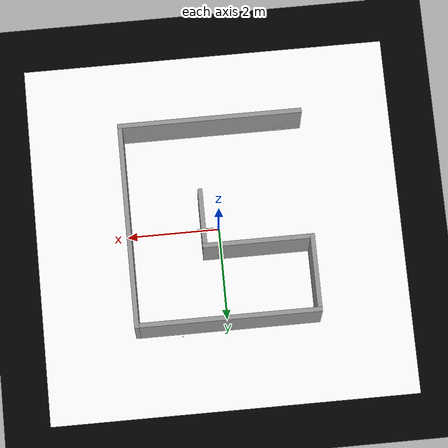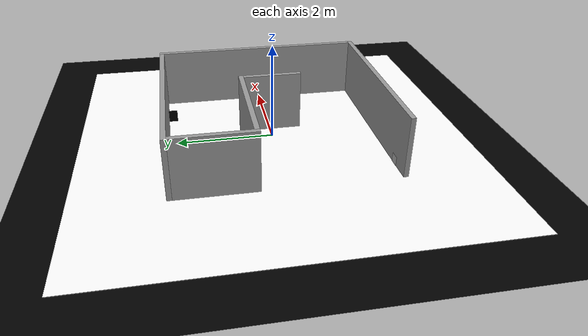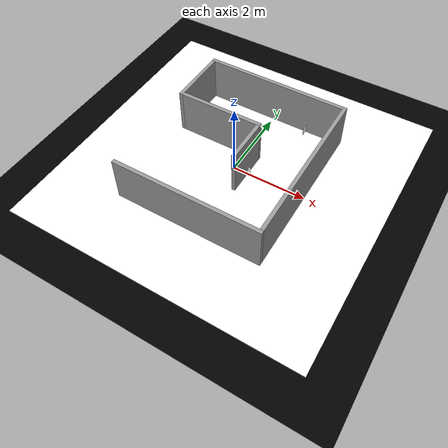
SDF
<sdf version="1.4">
  <world name="default">

    <physics name="1ms" type="ignored">
      <max_step_size>0.001</max_step_size>
      <real_time_factor>1.0</real_time_factor>
    </physics>
    <plugin
      filename="gz-sim-physics-system"
      name="gz::sim::systems::Physics">
    </plugin>
    <plugin
      filename="gz-sim-user-commands-system"
      name="gz::sim::systems::UserCommands">
    </plugin>
    <plugin
      filename="gz-sim-scene-broadcaster-system"
      name="gz::sim::systems::SceneBroadcaster">
    </plugin>

    <plugin
        filename="gz-sim-sensors-system"
        name="gz::sim::systems::Sensors">
        <render_engine>ogre2</render_engine>
    </plugin>

    <scene>
      <ambient>0.4 0.4 0.4 1</ambient>
      <background>0.7 0.7 0.7 1</background>
      <shadows>false</shadows>
    </scene>

    <!-- Arena lights -->
    <include>
    <name>light1</name>
      <uri>model://simple_light</uri>
      <pose>2 2 10 0 0 0</pose>
    </include>

    <include>
    <name>light2</name>
      <uri>model://simple_light</uri>
      <pose>-2 2 10 0 0 0</pose>
    </include>

    <include>
    <name>light3</name>
      <uri>model://simple_light</uri>
      <pose>-2 -2 10 0 0 0</pose>
    </include>

    <include>
    <name>light4</name>
      <uri>model://simple_light</uri>
      <pose>2 -2 10 0 0 0</pose>
    </include>

    <include>
      <uri>model://office_floor</uri>
      <pose>0.0 0.0 0.0 0.0 0.0 -1.5708</pose>
    </include>

    <include>
      <uri>model://avoidance_world_2</uri>
    </include>

    <include>
      <uri>model://goal_marker_3</uri>
      <pose>-1.2 1.5 0.001 0 0 0</pose>
    </include>

    <!-- Aruco markers -->
    <include>
      <name>marker_0</name>
      <uri>model://aruco_marker_0</uri>
      <pose>-1.5 -2.145 0.091 0 0 1.5708</pose>
    </include>

    <include>
      <name>marker_1</name>
      <uri>model://aruco_marker_1</uri>
      <pose>0.3 0 0.091 0 0 3.1415</pose>
    </include>

    <include>
      <name>marker_2</name>
      <uri>model://aruco_marker_2</uri>
      <pose>1.0 2.14 0.091 0 0 4.7123</pose>
    </include>

  </world>
</sdf>

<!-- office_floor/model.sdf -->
<sdf version="1.5">
        <model name="puzzlebot_base">
            <static>true</static>
        <link name="link">
            <pose>0 0 0.0 0 0 1.5708 </pose>
            <collision name="collision">
                <geometry>
                <plane>
                    <normal>0 0 1</normal>
                    <size>10.0 10.0</size>
                </plane>
                </geometry>
                <surface>
                <contact>
                    <collide_bitmask>0xffff</collide_bitmask>
                    </contact>
                        <friction>
                        <ode>
                            <mu>100</mu>
                            <mu2>50</mu2>
                        </ode>
                        </friction>
                </surface>
            </collision>
            <visual name="visual">
                <pose>0 0 -0.001 0 0 0</pose>
                    <cast_shadows>false</cast_shadows>
                    <geometry>
                    <plane>
                        <normal>0 0 1</normal>
                        <size>10.0 10.0</size>
                    </plane>
                    </geometry>
                        <material>
                            <ambient>0 0 0 1</ambient>
                            <diffuse>0 0 0 1</diffuse>
                            <specular>0 0 0 1</specular>
                        </material>
                </visual>

                <visual name="mcr2_logo">
                <pose>0 0 0.0 0 0 0</pose>
                <cast_shadows>false</cast_shadows>
                <geometry>
                    <plane>
                    <normal>0 0 1</normal>
                    <size>8.0 8.0</size>
                    </plane>
                </geometry>
                        <material>
                            <ambient>1 1 1 1</ambient>
                            <diffuse>1 1 1 1</diffuse>
                            <specular>1 1 1 1</specular>
                            <pbr>
                                <metal>
                                <albedo_map>model://office_floor/materials/textures/puzzlebot_wood_7.png</albedo_map>
                                <normal_map>model://office_floor/materials/textures/puzzlebot_wood_7.png</normal_map>
                                </metal>
                            </pbr>
                        </material>
                </visual>
            </link>

        </model>
    </sdf>

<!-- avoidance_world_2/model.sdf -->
<sdf version="1.5">
  <model name='office'>

    <static>1</static>

    <link name='Wall_10'>
        <pose>0.35 -0.05 0.625 0.0 0.0 0.0</pose>

        <visual name='Wall_10_Visual'>
            <pose>0 0 0 0 -0 0</pose>
            <geometry>
                <box>
                    <size>0.1 1.2 1.25</size>
                </box>
            </geometry>
              <material>
                <ambient>0.6 0.6 0.6 1</ambient>
                <diffuse>0.6 0.6 0.6 1</diffuse>
                <specular>0.6 0.6 0.6 1</specular>
              </material>
        <cast_shadows>0</cast_shadows>
      </visual>

      <collision name='Wall_10_Collision'>
        <max_contacts>10</max_contacts>
        <pose>0 0 0.0 0 0 0</pose>
        <geometry>
          <box>
            <size>0.1 1.2 1.25</size>
          </box>
        </geometry>
        <surface>
          <friction>
            <ode>
              <mu>1</mu>
              <mu2>1</mu2>
              <fdir1>0 0 0</fdir1>
              <slip1>0</slip1>
              <slip2>0</slip2>
            </ode>
          </friction>
          <bounce>
            <restitution_coefficient>0</restitution_coefficient>
            <threshold>1e+06</threshold>
          </bounce>
          <contact>
            <collide_without_contact>0</collide_without_contact>
            <collide_without_contact_bitmask>1</collide_without_contact_bitmask>
            <collide_bitmask>1</collide_bitmask>
            <ode>
              <soft_cfm>0</soft_cfm>
              <soft_erp>0.2</soft_erp>
              <kp>1e+13</kp>
              <kd>1</kd>
              <max_vel>0.01</max_vel>
              <min_depth>0</min_depth>
            </ode>
            <bullet>
              <split_impulse>1</split_impulse>
              <split_impulse_penetration_threshold>-0.01</split_impulse_penetration_threshold>
              <soft_cfm>0</soft_cfm>
              <soft_erp>0.2</soft_erp>
              <kp>1e+13</kp>
              <kd>1</kd>
            </bullet>
          </contact>
        </surface>
      </collision>
    </link>

    <link name='Wall_20'>
          <pose>-0.750 0.6 0.625 0.0 0.0 0.0</pose>

          <visual name='Wall_20_Visual'>
              <pose>0 0 0 0 -0 0</pose>
              <geometry>
                  <box>
                      <size>2.3 0.1 1.25</size>
                  </box>
              </geometry>
              <material>
                <ambient>0.6 0.6 0.6 1</ambient>
                <diffuse>0.6 0.6 0.6 1</diffuse>
                <specular>0.6 0.6 0.6 1</specular>
              </material>
          <cast_shadows>0</cast_shadows>
        </visual>

        <collision name='Wall_20_Collision'>
          <max_contacts>10</max_contacts>
          <pose>0 0 0.0 0 0 0</pose>
          <geometry>
            <box>
              <size>2.3 0.1 1.25</size>
            </box>
          </geometry>
          <surface>
            <friction>
              <ode>
                <mu>1</mu>
                <mu2>1</mu2>
                <fdir1>0 0 0</fdir1>
                <slip1>0</slip1>
                <slip2>0</slip2>
              </ode>
            </friction>
            <bounce>
              <restitution_coefficient>0</restitution_coefficient>
              <threshold>1e+06</threshold>
            </bounce>
            <contact>
              <collide_without_contact>0</collide_without_contact>
              <collide_without_contact_bitmask>1</collide_without_contact_bitmask>
              <collide_bitmask>1</collide_bitmask>
              <ode>
                <soft_cfm>0</soft_cfm>
                <soft_erp>0.2</soft_erp>
                <kp>1e+13</kp>
                <kd>1</kd>
                <max_vel>0.01</max_vel>
                <min_depth>0</min_depth>
              </ode>
              <bullet>
                <split_impulse>1</split_impulse>
                <split_impulse_penetration_threshold>-0.01</split_impulse_penetration_threshold>
                <soft_cfm>0</soft_cfm>
                <soft_erp>0.2</soft_erp>
                <kp>1e+13</kp>
                <kd>1</kd>
              </bullet>
            </contact>
          </surface>
        </collision>
    </link>

    <link name='Wall_30'>
        <pose>-1.95 1.35 0.625 0.0 0.0 0.0</pose>

        <visual name='Wall_30_Visual'>
            <pose>0 0 0 0 -0 0</pose>
            <geometry>
                <box>
                    <size>0.1 1.6 1.25</size>
                </box>
            </geometry>
              <material>
                <ambient>0.6 0.6 0.6 1</ambient>
                <diffuse>0.6 0.6 0.6 1</diffuse>
                <specular>0.6 0.6 0.6 1</specular>
              </material>
        <cast_shadows>0</cast_shadows>
      </visual>

      <collision name='Wall_30_Collision'>
        <max_contacts>10</max_contacts>
        <pose>0 0 0.0 0 0 0</pose>
        <geometry>
          <box>
            <size>0.1 1.6 1.25</size>
          </box>
        </geometry>
        <surface>
          <friction>
            <ode>
              <mu>1</mu>
              <mu2>1</mu2>
              <fdir1>0 0 0</fdir1>
              <slip1>0</slip1>
              <slip2>0</slip2>
            </ode>
          </friction>
          <bounce>
            <restitution_coefficient>0</restitution_coefficient>
            <threshold>1e+06</threshold>
          </bounce>
          <contact>
            <collide_without_contact>0</collide_without_contact>
            <collide_without_contact_bitmask>1</collide_without_contact_bitmask>
            <collide_bitmask>1</collide_bitmask>
            <ode>
              <soft_cfm>0</soft_cfm>
              <soft_erp>0.2</soft_erp>
              <kp>1e+13</kp>
              <kd>1</kd>
              <max_vel>0.01</max_vel>
              <min_depth>0</min_depth>
            </ode>
            <bullet>
              <split_impulse>1</split_impulse>
              <split_impulse_penetration_threshold>-0.01</split_impulse_penetration_threshold>
              <soft_cfm>0</soft_cfm>
              <soft_erp>0.2</soft_erp>
              <kp>1e+13</kp>
              <kd>1</kd>
            </bullet>
          </contact>
        </surface>
      </collision>
    </link>

    <link name='Wall_40'>
        <pose>-0.05 2.2 0.625 0.0 0.0 0.0</pose>

        <visual name='Wall_40_Visual'>
            <pose>0 0 0 0 -0 0</pose>
            <geometry>
                <box>
                    <size>3.9 0.1 1.25</size>
                </box>
            </geometry>
              <material>
                <ambient>0.6 0.6 0.6 1</ambient>
                <diffuse>0.6 0.6 0.6 1</diffuse>
                <specular>0.6 0.6 0.6 1</specular>
              </material>
        <cast_shadows>0</cast_shadows>
      </visual>

      <collision name='Wall_40_Collision'>
        <max_contacts>10</max_contacts>
        <pose>0 0 0.0 0 0 0</pose>
        <geometry>
          <box>
            <size>3.9 0.1 1.25</size>
          </box>
        </geometry>
        <surface>
          <friction>
            <ode>
              <mu>1</mu>
              <mu2>1</mu2>
              <fdir1>0 0 0</fdir1>
              <slip1>0</slip1>
              <slip2>0</slip2>
            </ode>
          </friction>
          <bounce>
            <restitution_coefficient>0</restitution_coefficient>
            <threshold>1e+06</threshold>
          </bounce>
          <contact>
            <collide_without_contact>0</collide_without_contact>
            <collide_without_contact_bitmask>1</collide_without_contact_bitmask>
            <collide_bitmask>1</collide_bitmask>
            <ode>
              <soft_cfm>0</soft_cfm>
              <soft_erp>0.2</soft_erp>
              <kp>1e+13</kp>
              <kd>1</kd>
              <max_vel>0.01</max_vel>
              <min_depth>0</min_depth>
            </ode>
            <bullet>
              <split_impulse>1</split_impulse>
              <split_impulse_penetration_threshold>-0.01</split_impulse_penetration_threshold>
              <soft_cfm>0</soft_cfm>
              <soft_erp>0.2</soft_erp>
              <kp>1e+13</kp>
              <kd>1</kd>
            </bullet>
          </contact>
        </surface>
      </collision>
    </link>

    <link name='Wall_50'>
        <pose>1.95 0.05 0.625 0.0 0.0 0.0</pose>

        <visual name='Wall_50_Visual'>
            <pose>0 0 0 0 -0 0</pose>
            <geometry>
                <box>
                    <size>0.1 4.4 1.25</size>
                </box>
            </geometry>
              <material>
                <ambient>0.6 0.6 0.6 1</ambient>
                <diffuse>0.6 0.6 0.6 1</diffuse>
                <specular>0.6 0.6 0.6 1</specular>
              </material>
        <cast_shadows>0</cast_shadows>
      </visual>

      <collision name='Wall_50_Collision'>
        <max_contacts>10</max_contacts>
        <pose>0 0 0.0 0 0 0</pose>
        <geometry>
          <box>
            <size>0.1 4.4 1.25</size>
          </box>
        </geometry>
        <surface>
          <friction>
            <ode>
              <mu>1</mu>
              <mu2>1</mu2>
              <fdir1>0 0 0</fdir1>
              <slip1>0</slip1>
              <slip2>0</slip2>
            </ode>
          </friction>
          <bounce>
            <restitution_coefficient>0</restitution_coefficient>
            <threshold>1e+06</threshold>
          </bounce>
          <contact>
            <collide_without_contact>0</collide_without_contact>
            <collide_without_contact_bitmask>1</collide_without_contact_bitmask>
            <collide_bitmask>1</collide_bitmask>
            <ode>
              <soft_cfm>0</soft_cfm>
              <soft_erp>0.2</soft_erp>
              <kp>1e+13</kp>
              <kd>1</kd>
              <max_vel>0.01</max_vel>
              <min_depth>0</min_depth>
            </ode>
            <bullet>
              <split_impulse>1</split_impulse>
              <split_impulse_penetration_threshold>-0.01</split_impulse_penetration_threshold>
              <soft_cfm>0</soft_cfm>
              <soft_erp>0.2</soft_erp>
              <kp>1e+13</kp>
              <kd>1</kd>
            </bullet>
          </contact>
        </surface>
      </collision>
    </link>

    <link name='Wall_60'>
        <pose>0.0 -2.2 0.625 0.0 0.0 0.0</pose>

        <visual name='Wall_60_Visual'>
            <pose>0 0 0 0 -0 0</pose>
            <geometry>
                <box>
                    <size>4.0 0.1 1.25</size>
                </box>
            </geometry>
              <material>
                <ambient>0.6 0.6 0.6 1</ambient>
                <diffuse>0.6 0.6 0.6 1</diffuse>
                <specular>0.6 0.6 0.6 1</specular>
              </material>
        <cast_shadows>0</cast_shadows>
      </visual>

      <collision name='Wall_60_Collision'>
        <max_contacts>10</max_contacts>
        <pose>0 0 0.0 0 0 0</pose>
        <geometry>
          <box>
            <size>4.0 0.1 1.25</size>
          </box>
        </geometry>
        <surface>
          <friction>
            <ode>
              <mu>1</mu>
              <mu2>1</mu2>
              <fdir1>0 0 0</fdir1>
              <slip1>0</slip1>
              <slip2>0</slip2>
            </ode>
          </friction>
          <bounce>
            <restitution_coefficient>0</restitution_coefficient>
            <threshold>1e+06</threshold>
          </bounce>
          <contact>
            <collide_without_contact>0</collide_without_contact>
            <collide_without_contact_bitmask>1</collide_without_contact_bitmask>
            <collide_bitmask>1</collide_bitmask>
            <ode>
              <soft_cfm>0</soft_cfm>
              <soft_erp>0.2</soft_erp>
              <kp>1e+13</kp>
              <kd>1</kd>
              <max_vel>0.01</max_vel>
              <min_depth>0</min_depth>
            </ode>
            <bullet>
              <split_impulse>1</split_impulse>
              <split_impulse_penetration_threshold>-0.01</split_impulse_penetration_threshold>
              <soft_cfm>0</soft_cfm>
              <soft_erp>0.2</soft_erp>
              <kp>1e+13</kp>
              <kd>1</kd>
            </bullet>
          </contact>
        </surface>
      </collision>
    </link>

  </model>
  </sdf>

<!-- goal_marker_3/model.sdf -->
<sdf version="1.5">
        <model name="goal_marker_3">
            <static>true</static>
                <link name="link">
                    <pose>0 0 0 0 0 0</pose>
                    <visual name="visual">
                        <cast_shadows>false</cast_shadows>
                        <geometry>
                            <plane>
                                    <normal>0 0 1</normal>
                                    <size>0.4 0.4</size>
                            </plane>
                        </geometry>
                        <material>
                            <ambient>1 1 1 1</ambient>
                            <diffuse>1 1 1 1</diffuse>
                            <specular>1 1 1 1</specular>
                            <pbr>
                                <metal>
                                <albedo_map>model://goal_marker_3/materials/textures/mcr2_goal_3.png</albedo_map>
                                <normal_map>model://goal_marker_3/materials/textures/mcr2_goal_3.png</normal_map>
                                </metal>
                            </pbr>
                        </material>
                    </visual>
                </link>
        </model>
    </sdf>

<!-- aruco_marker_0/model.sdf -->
<sdf version='1.6'>
  <model name='aruco_marker_0'>
    <link name='link_0'>
      <pose frame=''>0 0 0 0 -0 0</pose>
      <inertial>
        <mass>1</mass>
        <inertia>
          <ixx>0</ixx>
          <ixy>0</ixy>
          <ixz>0</ixz>
          <iyy>0</iyy>
          <iyz>0</iyz>
          <izz>0</izz>
        </inertia>
      </inertial>
      <visual name='visual'>
        <pose frame=''>0 0 0 0 -0 0</pose>
        <geometry>
          <mesh>
            <uri>file://isr-testbed/aruco_marker_0/aruco_marker_0.dae</uri>
            <scale>0.1 0.1 0.1</scale>
          </mesh>
        </geometry>
        <material>
          <lighting>1</lighting>
          <script>
            <uri>file://media/materials/scripts/gazebo.material</uri>
            <name>Gazebo/DepthMapVS</name>
          </script>
          <ambient>0.3 0.3 0.3 1</ambient>
          <diffuse>0.7 0.7 0.7 1</diffuse>
          <specular>0.01 0.01 0.01 1</specular>
          <emissive>0 0 0 1</emissive>
        </material>
        <transparency>0</transparency>
        <cast_shadows>1</cast_shadows>
      </visual>
      <collision name='collision'>
        <laser_retro>0</laser_retro>
        <max_contacts>10</max_contacts>
        <pose frame=''>0 0 0 0 -0 0</pose>
        <geometry>
          <mesh>
            <uri>file://isr-testbed/aruco_marker_0/aruco_marker_0.dae</uri>
            <scale>0.1 0.1 0.1</scale>
          </mesh>
        </geometry>
        <surface>
          <friction>
            <ode>
              <mu>1</mu>
              <mu2>1</mu2>
              <fdir1>0 0 0</fdir1>
              <slip1>0</slip1>
              <slip2>0</slip2>
            </ode>
            <torsional>
              <coefficient>1</coefficient>
              <patch_radius>0</patch_radius>
              <surface_radius>0</surface_radius>
              <use_patch_radius>1</use_patch_radius>
              <ode>
                <slip>0</slip>
              </ode>
            </torsional>
          </friction>
          <bounce>
            <restitution_coefficient>0</restitution_coefficient>
            <threshold>1e+06</threshold>
          </bounce>
          <contact>
            <collide_without_contact>0</collide_without_contact>
            <collide_without_contact_bitmask>1</collide_without_contact_bitmask>
            <collide_bitmask>1</collide_bitmask>
            <ode>
              <soft_cfm>0</soft_cfm>
              <soft_erp>0.2</soft_erp>
              <kp>1e+13</kp>
              <kd>1</kd>
              <max_vel>0.01</max_vel>
              <min_depth>0</min_depth>
            </ode>
            <bullet>
              <split_impulse>1</split_impulse>
              <split_impulse_penetration_threshold>-0.01</split_impulse_penetration_threshold>
              <soft_cfm>0</soft_cfm>
              <soft_erp>0.2</soft_erp>
              <kp>1e+13</kp>
              <kd>1</kd>
            </bullet>
          </contact>
        </surface>
      </collision>
    </link>
    <static>1</static>
    <allow_auto_disable>1</allow_auto_disable>
  </model>
</sdf>

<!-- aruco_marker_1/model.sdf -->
<sdf version="1.9">
  <model name="aruco_marker_1">
    <static>true</static>

    <link name="link">
      <visual name="front">
        <pose>0 0 0 0 0 0</pose>
        <geometry>
          <box>
            <size>0.35 0.002 0.35</size>
          </box>
        </geometry>

        <material>
          <ambient>1 1 1 1</ambient>
          <diffuse>1 1 1 1</diffuse>
          <specular>0.1 0.1 0.1 1</specular>
          <emissive>0 0 0 1</emissive>

          <pbr>
            <metal>
              <albedo_map>
                model://aruco/aruco_marker_1/materials/textures/marker_1.png
              </albedo_map>
              <emissive_map>
                model://aruco/aruco_marker_1/materials/textures/marker_1.png
              </emissive_map>
            </metal>
          </pbr>
        </material>
      </visual>

      <visual name="back">
        <pose>0 -0.002 0 0 0 3.1416</pose>
        <geometry>
          <box>
            <size>0.35 0.002 0.35</size>
          </box>
        </geometry>
        <material>
          <ambient>0 0 0 1</ambient>
          <diffuse>0 0 0 1</diffuse>
        </material>
      </visual>

    </link>

  </model>
</sdf>

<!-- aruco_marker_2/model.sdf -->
<sdf version="1.9">
  <model name="aruco_marker_2">
    <static>true</static>

    <link name="link">
      <visual name="front">
        <pose>0 0 0 0 0 0</pose>
        <geometry>
          <box>
            <size>0.35 0.002 0.35</size>
          </box>
        </geometry>

        <material>
          <ambient>1 1 1 1</ambient>
          <diffuse>1 1 1 1</diffuse>
          <specular>0.1 0.1 0.1 1</specular>
          <emissive>0 0 0 1</emissive>

          <pbr>
            <metal>
              <albedo_map>
                model://aruco/aruco_marker_2/materials/textures/marker_2.png
              </albedo_map>
              <emissive_map>
                model://aruco/aruco_marker_2/materials/textures/marker_2.png
              </emissive_map>
            </metal>
          </pbr>
        </material>
      </visual>

      <visual name="back">
        <pose>0 -0.002 0 0 0 3.1416</pose>
        <geometry>
          <box>
            <size>0.35 0.002 0.35</size>
          </box>
        </geometry>
        <material>
          <ambient>0 0 0 1</ambient>
          <diffuse>0 0 0 1</diffuse>
        </material>
      </visual>

    </link>

  </model>
</sdf>
